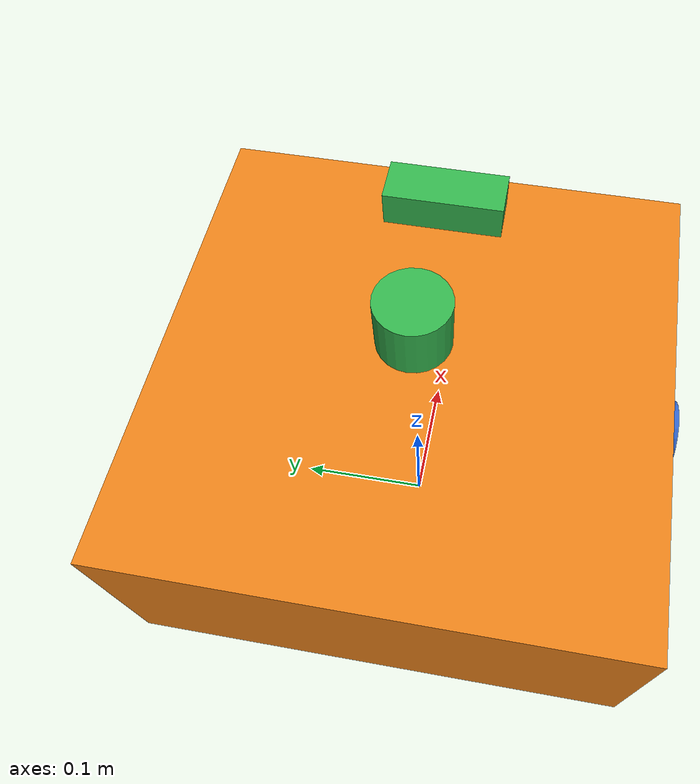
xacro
<?xml version="1.0"?>
<robot xmlns:xacro="http://www.ros.org/wiki/xacro" name="mobile_robot">

  <xacro:include filename="inertia.urdf.xacro"/>
  <xacro:include filename="properties.urdf.xacro"/>
  <xacro:include filename="ros2_control.urdf.xacro"/>

  <!-- ==================== Base Link ==================== -->
  <link name="base_footprint"/>

  <joint name="base_footprint_joint" type="fixed">
      <parent link="base_footprint"/>
      <child link="base_link"/>
      <origin xyz="0 0 0" rpy="0 0 0"/>
  </joint>

  <link name='base_link'>
    <visual>
      <origin xyz="0 0 ${wheel_radius + wheel_z_offset + base_height/2}" rpy="0 0 0"/>
      <geometry><box size="${base_length} ${base_width} ${base_height}"/>
      </geometry>
      <material name="orange"/>
    </visual>
    <collision>
      <origin xyz="0 0 ${wheel_radius + wheel_z_offset + base_height/2}" rpy="0 0 0"/>
      <geometry><box size="${base_length} ${base_width} ${base_height}"/>
      </geometry>
    </collision>
    <inertial>
      <origin xyz="0 0 ${wheel_radius + wheel_z_offset + base_height/2}" rpy="0 0 0"/>
      <mass value="${mass_base}"/>
      <xacro:box_inertia mass="${mass_base}" x="${base_length}" y="${base_width}" z="${base_height}"/>
    </inertial>
  </link>

  <!-- ==================== Left Wheel ==================== -->
  <joint name='left_wheel_joint' type='continuous'>
    <parent link='base_link'/>
    <child link='left_wheel'/>
    <origin xyz="${base_length/2 - wheel_x_offset} ${base_width/2 + wheel_y_offset + wheel_thickness/2} ${wheel_radius}" rpy="0 0 0"/>
    <axis xyz="0 1 0"/>
  </joint>

  <link name='left_wheel'>
    <visual>
      <origin xyz="0 0 0" rpy="${-pi/2} 0 0"/>
      <geometry><cylinder radius="${wheel_radius}" length="${wheel_thickness}"/></geometry>
      <material name="blue"/>
    </visual>
    <collision>
      <origin xyz="0 0 0" rpy="${pi/2} 0 0"/>
      <geometry><cylinder radius="${wheel_radius}" length="${wheel_thickness}"/></geometry>
    </collision>
    <inertial>
      <origin xyz="0 0 0" rpy="${pi/2} 0 0"/>
      <mass value="${mass_wheel}"/>
      <xacro:cylinder_inertia mass="${mass_wheel}" radius="${wheel_radius}" length="${wheel_thickness}"/>
    </inertial>
  </link>

  <!-- ==================== Right Wheel ==================== -->
  <joint name='right_wheel_joint' type='continuous'>
    <parent link='base_link'/>
    <child link='right_wheel'/>
    <origin xyz="${base_length/2 - wheel_x_offset} ${-base_width/2 - wheel_y_offset - wheel_thickness/2} ${wheel_radius}" rpy="0 0 0"/>
    <axis xyz="0 1 0"/>
  </joint>

  <link name='right_wheel'>
    <visual>
      <origin xyz="0 0 0" rpy="${pi/2} 0 0"/>
      <geometry><cylinder radius="${wheel_radius}" length="${wheel_thickness}"/></geometry>
      <material name="blue"/>
    </visual>
    <collision>
      <origin xyz="0 0 0" rpy="${pi/2} 0 0"/>
      <geometry><cylinder radius="${wheel_radius}" length="${wheel_thickness}"/></geometry>
    </collision>
    <inertial>
      <origin xyz="0 0 0" rpy="${pi/2} 0 0"/>
      <mass value="${mass_wheel}"/>
      <xacro:cylinder_inertia mass="${mass_wheel}" radius="${wheel_radius}" length="${wheel_thickness}"/>
    </inertial>
  </link>

  <!-- ==================== Lidar ==================== -->

<joint name="lidar_joint" type="fixed">
  <parent link="base_link"/>
  <child link="lidar"/>
  <origin xyz="0 0 ${wheel_radius + wheel_z_offset + base_height + lidar_z_offset + lidar_height/2}" rpy="0 0 ${pi}"/>
</joint>

<link name="lidar">
  <visual>
    <origin xyz="0 0 0" rpy="0 0 0"/>
    <geometry><cylinder radius="${lidar_radius}" length="${lidar_height}"/></geometry>
    <material name="green"/>
  </visual>
   <collision>
      <origin xyz="0 0 0" rpy="0 0 0"/>
      <geometry><cylinder radius="${lidar_radius}" length="${lidar_height}"/></geometry>
    </collision>
    <inertial>
      <origin xyz="0 0 0" rpy="0 0 0"/>
      <mass value="0.01"/>
      <xacro:cylinder_inertia mass="0.01" radius="${lidar_radius}" length="${lidar_height}"/>
    </inertial>
</link>

<!-- ==================== Depth Camera ==================== -->

<joint name="camera_joint" type="fixed">
  <parent link="base_link"/>
  <child link="camera_link"/>
  <origin xyz="${base_length/2 - camera_x_offset} 0 ${wheel_radius + wheel_z_offset + base_height + camera_z_offset + camera_height/2}" rpy="0 0 0"/>
</joint>

<link name='camera_link'>
    <visual>
      <origin xyz="${-camera_length/2} 0 0" rpy="0 0 0"/>
      <geometry><box size="${camera_length} ${camera_width} ${camera_height}"/>
      </geometry>
      <material name="green"/>
    </visual>
    <collision>
      <origin xyz="${-camera_length/2} 0 0" rpy="0 0 0"/>
      <geometry><box size="${camera_length} ${camera_width} ${camera_height}"/>
      </geometry>
    </collision>
    <inertial>
      <origin xyz="${-camera_length/2} 0 0" rpy="0 0 0"/>
      <mass value="0.01"/>
      <xacro:box_inertia mass="0.01" x="${camera_length}" y="${camera_width}" z="${camera_height}"/>
    </inertial>
  </link>

<!-- ==================== Optical Frame ==================== -->
<joint name="camera_depth_optical_joint" type="fixed">
  <parent link="camera_link"/>
  <child link="camera_depth_optical_frame"/>
  <!-- Pitch -90° to rotate X→forward, Y→down, Z→right (depth camera convention) -->
  <origin xyz="0 0 0" rpy="${-pi/2} 0 ${-pi/2}"/>
</joint>

<link name="camera_depth_optical_frame"/>

<!-- ==================== IMU ==================== -->
<joint name="imu_joint" type="fixed">
  <parent link="base_link"/>
  <child link="imu_link"/>
  <origin xyz="0 0 ${wheel_radius + wheel_z_offset + imu_z_offset}" rpy="0 0 0"/>
</joint>

<link name="imu_link">
  <inertial>
    <mass value="0.01"/>
    <inertia ixx="0.0001" ixy="0" ixz="0" iyy="0.0001" iyz="0" izz="0.0001"/>
  </inertial>
</link>

</robot>

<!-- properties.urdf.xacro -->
<robot xmlns:xacro="http://www.ros.org/wiki/xacro">

  <!-- Dimensions -->

  <!-- Base  -->

  <xacro:property name="base_length"   value="0.34"/>
  <xacro:property name="base_width"   value="0.34"/>
  <xacro:property name="base_height"   value="0.14"/>
  <xacro:property name="mass_base" value="4"/>

  <!-- Wheels -->

  <xacro:property name="wheel_radius" value="0.0325"/>
  <xacro:property name="wheel_thickness" value="0.026"/>
  <xacro:property name="wheel_z_offset" value="0.037"/> <!-- Wheel center to Base bottom -->
  <xacro:property name="wheel_y_offset" value="0.015"/> <!-- Wheel inner to Base outer -->
  <xacro:property name="wheel_x_offset" value="0.1"/> <!-- Wheel center to Base front -->
  <xacro:property name="mass_wheel" value="0.1"/>

  <!-- Lidar -->

  <xacro:property name="lidar_height" value="0.04"/>
  <xacro:property name="lidar_radius" value="0.025"/>
  <xacro:property name="lidar_z_offset" value="0.025"/> <!-- Lidar bottom to Base upper -->

  <!-- Depth Camera -->
  <xacro:property name="camera_length" value="0.033"/>
  <xacro:property name="camera_width" value="0.085"/>
  <xacro:property name="camera_height" value="0.026"/>
  <xacro:property name="camera_z_offset" value="0.009"/> <!-- Camera bottom to Base upper -->
  <xacro:property name="camera_x_offset" value="0.03"/> <!-- Camera front to Base front -->

  <!-- IMU -->
   <xacro:property name="imu_z_offset" value="0.037"/> <!-- MPU to Base bottom -->

  <!-- Materials -->
  <material name="blue">
    <color rgba="0.2 0.4 0.8 1.0"/>
  </material>

  <material name="green">
    <color rgba="0.2 0.7 0.3 1.0"/>
  </material>

  <material name="orange">
    <color rgba="0.9 0.5 0.1 1.0"/>
  </material>

  <material name="red">
    <color rgba="0.8 0.1 0.1 1.0"/>
  </material>

</robot>
